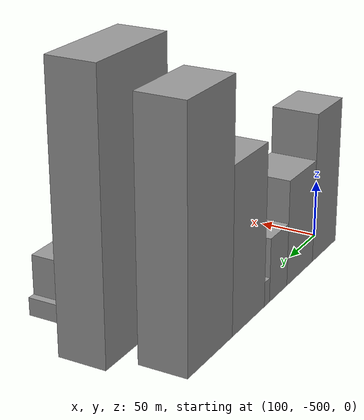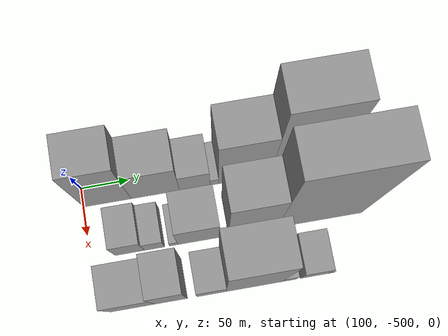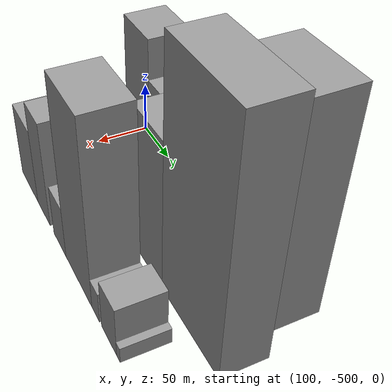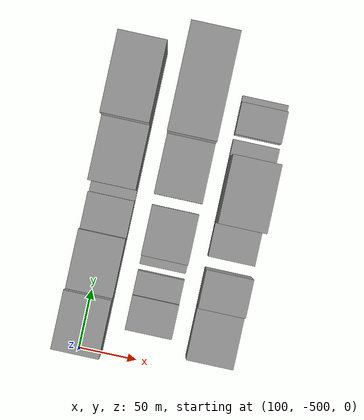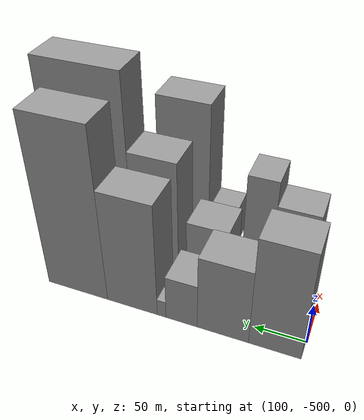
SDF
<sdf version="1.6">
 <world name="default">
  <model name="building_13">
   <static>1</static>
   <pose>100.0000 -474.6514 0 0.000000 0.000000 0.000000</pose>
   <link name="link">
    <pose>0 0 64.50 0 0 0</pose>
    <collision name="collision"><geometry><box><size>40.0000 49.0968 129.0000</size></box></geometry></collision>
    <visual name="visual">
     <cast_shadows>0</cast_shadows>
     <geometry><box><size>40.0000 49.0968 129.0000</size></box></geometry>
     <material>
      <script>
       <uri>model://grey_wall/materials/scripts</uri>
       <uri>model://grey_wall/materials/textures</uri>
       <name>vrc/grey_wall</name>
      </script>
     </material>
    </visual>
   </link>
  </model>
  <model name="building_14">
   <static>1</static>
   <pose>100.0000 -424.9528 0 0.000000 0.000000 0.000000</pose>
   <link name="link">
    <pose>0 0 45.00 0 0 0</pose>
    <collision name="collision"><geometry><box><size>40.0000 50.3003 90.0000</size></box></geometry></collision>
    <visual name="visual">
     <cast_shadows>0</cast_shadows>
     <geometry><box><size>40.0000 50.3003 90.0000</size></box></geometry>
     <material>
      <script>
       <uri>model://grey_wall/materials/scripts</uri>
       <uri>model://grey_wall/materials/textures</uri>
       <name>vrc/grey_wall</name>
      </script>
     </material>
    </visual>
   </link>
  </model>
  <model name="building_15">
   <static>1</static>
   <pose>100.0000 -383.8608 0 0.000000 0.000000 0.000000</pose>
   <link name="link">
    <pose>0 0 27.00 0 0 0</pose>
    <collision name="collision"><geometry><box><size>40.0000 31.8836 54.0000</size></box></geometry></collision>
    <visual name="visual">
     <cast_shadows>0</cast_shadows>
     <geometry><box><size>40.0000 31.8836 54.0000</size></box></geometry>
     <material>
      <script>
       <uri>model://grey_wall/materials/scripts</uri>
       <uri>model://grey_wall/materials/textures</uri>
       <name>vrc/grey_wall</name>
      </script>
     </material>
    </visual>
   </link>
  </model>
  <model name="building_16">
   <static>1</static>
   <pose>100.0000 -363.3936 0 0.000000 0.000000 0.000000</pose>
   <link name="link">
    <pose>0 0 10.50 0 0 0</pose>
    <collision name="collision"><geometry><box><size>40.0000 9.0508 21.0000</size></box></geometry></collision>
    <visual name="visual">
     <cast_shadows>0</cast_shadows>
     <geometry><box><size>40.0000 9.0508 21.0000</size></box></geometry>
     <material>
      <script>
       <uri>model://grey_wall/materials/scripts</uri>
       <uri>model://grey_wall/materials/textures</uri>
       <name>vrc/grey_wall</name>
      </script>
     </material>
    </visual>
   </link>
  </model>
  <model name="building_17">
   <static>1</static>
   <pose>100.0000 -331.9854 0 0.000000 0.000000 0.000000</pose>
   <link name="link">
    <pose>0 0 67.50 0 0 0</pose>
    <collision name="collision"><geometry><box><size>40.0000 53.7657 135.0000</size></box></geometry></collision>
    <visual name="visual">
     <cast_shadows>0</cast_shadows>
     <geometry><box><size>40.0000 53.7657 135.0000</size></box></geometry>
     <material>
      <script>
       <uri>model://grey_wall/materials/scripts</uri>
       <uri>model://grey_wall/materials/textures</uri>
       <name>vrc/grey_wall</name>
      </script>
     </material>
    </visual>
   </link>
  </model>
  <model name="building_18">
   <static>1</static>
   <pose>100.0000 -271.7139 0 0.000000 0.000000 0.000000</pose>
   <link name="link">
    <pose>0 0 100.50 0 0 0</pose>
    <collision name="collision"><geometry><box><size>40.0000 66.7772 201.0000</size></box></geometry></collision>
    <visual name="visual">
     <cast_shadows>0</cast_shadows>
     <geometry><box><size>40.0000 66.7772 201.0000</size></box></geometry>
     <material>
      <script>
       <uri>model://grey_wall/materials/scripts</uri>
       <uri>model://grey_wall/materials/textures</uri>
       <name>vrc/grey_wall</name>
      </script>
     </material>
    </visual>
   </link>
  </model>
  <model name="building_60">
   <static>1</static>
   <pose>155.0000 -459.6439 0 0.000000 0.000000 0.000000</pose>
   <link name="link">
    <pose>0 0 27.00 0 0 0</pose>
    <collision name="collision"><geometry><box><size>40.0000 29.7060 54.0000</size></box></geometry></collision>
    <visual name="visual">
     <cast_shadows>0</cast_shadows>
     <geometry><box><size>40.0000 29.7060 54.0000</size></box></geometry>
     <material>
      <script>
       <uri>model://grey_wall/materials/scripts</uri>
       <uri>model://grey_wall/materials/textures</uri>
       <name>vrc/grey_wall</name>
      </script>
     </material>
    </visual>
   </link>
  </model>
  <model name="building_61">
   <static>1</static>
   <pose>155.0000 -434.3549 0 0.000000 0.000000 0.000000</pose>
   <link name="link">
    <pose>0 0 19.50 0 0 0</pose>
    <collision name="collision"><geometry><box><size>40.0000 20.8720 39.0000</size></box></geometry></collision>
    <visual name="visual">
     <cast_shadows>0</cast_shadows>
     <geometry><box><size>40.0000 20.8720 39.0000</size></box></geometry>
     <material>
      <script>
       <uri>model://grey_wall/materials/scripts</uri>
       <uri>model://grey_wall/materials/textures</uri>
       <name>vrc/grey_wall</name>
      </script>
     </material>
    </visual>
   </link>
  </model>
  <model name="building_62">
   <static>1</static>
   <pose>155.0000 -414.6668 0 0.000000 0.000000 0.000000</pose>
   <link name="link">
    <pose>0 0 9.00 0 0 0</pose>
    <collision name="collision"><geometry><box><size>40.0000 8.5043 18.0000</size></box></geometry></collision>
    <visual name="visual">
     <cast_shadows>0</cast_shadows>
     <geometry><box><size>40.0000 8.5043 18.0000</size></box></geometry>
     <material>
      <script>
       <uri>model://grey_wall/materials/scripts</uri>
       <uri>model://grey_wall/materials/textures</uri>
       <name>vrc/grey_wall</name>
      </script>
     </material>
    </visual>
   </link>
  </model>
  <model name="building_63">
   <static>1</static>
   <pose>155.0000 -388.8836 0 0.000000 0.000000 0.000000</pose>
   <link name="link">
    <pose>0 0 37.50 0 0 0</pose>
    <collision name="collision"><geometry><box><size>40.0000 43.0620 75.0000</size></box></geometry></collision>
    <visual name="visual">
     <cast_shadows>0</cast_shadows>
     <geometry><box><size>40.0000 43.0620 75.0000</size></box></geometry>
     <material>
      <script>
       <uri>model://grey_wall/materials/scripts</uri>
       <uri>model://grey_wall/materials/textures</uri>
       <name>vrc/grey_wall</name>
      </script>
     </material>
    </visual>
   </link>
  </model>
  <model name="building_64">
   <static>1</static>
   <pose>155.0000 -333.4132 0 0.000000 0.000000 0.000000</pose>
   <link name="link">
    <pose>0 0 70.50 0 0 0</pose>
    <collision name="collision"><geometry><box><size>40.0000 49.8787 141.0000</size></box></geometry></collision>
    <visual name="visual">
     <cast_shadows>0</cast_shadows>
     <geometry><box><size>40.0000 49.8787 141.0000</size></box></geometry>
     <material>
      <script>
       <uri>model://grey_wall/materials/scripts</uri>
       <uri>model://grey_wall/materials/textures</uri>
       <name>vrc/grey_wall</name>
      </script>
     </material>
    </visual>
   </link>
  </model>
  <model name="building_65">
   <static>1</static>
   <pose>155.0000 -264.2904 0 0.000000 0.000000 0.000000</pose>
   <link name="link">
    <pose>0 0 111.00 0 0 0</pose>
    <collision name="collision"><geometry><box><size>40.0000 88.3669 222.0000</size></box></geometry></collision>
    <visual name="visual">
     <cast_shadows>0</cast_shadows>
     <geometry><box><size>40.0000 88.3669 222.0000</size></box></geometry>
     <material>
      <script>
       <uri>model://grey_wall/materials/scripts</uri>
       <uri>model://grey_wall/materials/textures</uri>
       <name>vrc/grey_wall</name>
      </script>
     </material>
    </visual>
   </link>
  </model>
  <model name="building_114">
   <static>1</static>
   <pose>210.0000 -464.7477 0 0.000000 0.000000 0.000000</pose>
   <link name="link">
    <pose>0 0 37.50 0 0 0</pose>
    <collision name="collision"><geometry><box><size>40.0000 44.8319 75.0000</size></box></geometry></collision>
    <visual name="visual">
     <cast_shadows>0</cast_shadows>
     <geometry><box><size>40.0000 44.8319 75.0000</size></box></geometry>
     <material>
      <script>
       <uri>model://grey_wall/materials/scripts</uri>
       <uri>model://grey_wall/materials/textures</uri>
       <name>vrc/grey_wall</name>
      </script>
     </material>
    </visual>
   </link>
  </model>
  <model name="building_115">
   <static>1</static>
   <pose>210.0000 -426.0649 0 0.000000 0.000000 0.000000</pose>
   <link name="link">
    <pose>0 0 52.50 0 0 0</pose>
    <collision name="collision"><geometry><box><size>40.0000 32.5337 105.0000</size></box></geometry></collision>
    <visual name="visual">
     <cast_shadows>0</cast_shadows>
     <geometry><box><size>40.0000 32.5337 105.0000</size></box></geometry>
     <material>
      <script>
       <uri>model://grey_wall/materials/scripts</uri>
       <uri>model://grey_wall/materials/textures</uri>
       <name>vrc/grey_wall</name>
      </script>
     </material>
    </visual>
   </link>
  </model>
  <model name="building_116">
   <static>1</static>
   <pose>210.0000 -385.2003 0 0.000000 0.000000 0.000000</pose>
   <link name="link">
    <pose>0 0 25.50 0 0 0</pose>
    <collision name="collision"><geometry><box><size>40.0000 29.1954 51.0000</size></box></geometry></collision>
    <visual name="visual">
     <cast_shadows>0</cast_shadows>
     <geometry><box><size>40.0000 29.1954 51.0000</size></box></geometry>
     <material>
      <script>
       <uri>model://grey_wall/materials/scripts</uri>
       <uri>model://grey_wall/materials/textures</uri>
       <name>vrc/grey_wall</name>
      </script>
     </material>
    </visual>
   </link>
  </model>
  <model name="building_117">
   <static>1</static>
   <pose>210.0000 -342.4000 0 0.000000 0.000000 0.000000</pose>
   <link name="link">
    <pose>0 0 87.00 0 0 0</pose>
    <collision name="collision"><geometry><box><size>40.0000 56.4052 174.0000</size></box></geometry></collision>
    <visual name="visual">
     <cast_shadows>0</cast_shadows>
     <geometry><box><size>40.0000 56.4052 174.0000</size></box></geometry>
     <material>
      <script>
       <uri>model://grey_wall/materials/scripts</uri>
       <uri>model://grey_wall/materials/textures</uri>
       <name>vrc/grey_wall</name>
      </script>
     </material>
    </visual>
   </link>
  </model>
  <model name="building_118">
   <static>1</static>
   <pose>210.0000 -306.6090 0 0.000000 0.000000 0.000000</pose>
   <link name="link">
    <pose>0 0 15.00 0 0 0</pose>
    <collision name="collision"><geometry><box><size>40.0000 15.1767 30.0000</size></box></geometry></collision>
    <visual name="visual">
     <cast_shadows>0</cast_shadows>
     <geometry><box><size>40.0000 15.1767 30.0000</size></box></geometry>
     <material>
      <script>
       <uri>model://grey_wall/materials/scripts</uri>
       <uri>model://grey_wall/materials/textures</uri>
       <name>vrc/grey_wall</name>
      </script>
     </material>
    </visual>
   </link>
  </model>
  <model name="building_119">
   <static>1</static>
   <pose>210.0000 -281.1561 0 0.000000 0.000000 0.000000</pose>
   <link name="link">
    <pose>0 0 24.00 0 0 0</pose>
    <collision name="collision"><geometry><box><size>40.0000 27.7292 48.0000</size></box></geometry></collision>
    <visual name="visual">
     <cast_shadows>0</cast_shadows>
     <geometry><box><size>40.0000 27.7292 48.0000</size></box></geometry>
     <material>
      <script>
       <uri>model://grey_wall/materials/scripts</uri>
       <uri>model://grey_wall/materials/textures</uri>
       <name>vrc/grey_wall</name>
      </script>
     </material>
    </visual>
   </link>
  </model>
  <model name="building_120">
   <static>1</static>
   <pose>210.0000 -264.0414 0 0.000000 0.000000 0.000000</pose>
   <link name="link">
    <pose>0 0 7.50 0 0 0</pose>
    <collision name="collision"><geometry><box><size>40.0000 6.5001 15.0000</size></box></geometry></collision>
    <visual name="visual">
     <cast_shadows>0</cast_shadows>
     <geometry><box><size>40.0000 6.5001 15.0000</size></box></geometry>
     <material>
      <script>
       <uri>model://grey_wall/materials/scripts</uri>
       <uri>model://grey_wall/materials/textures</uri>
       <name>vrc/grey_wall</name>
      </script>
     </material>
    </visual>
   </link>
  </model>
 </world>
</sdf>
